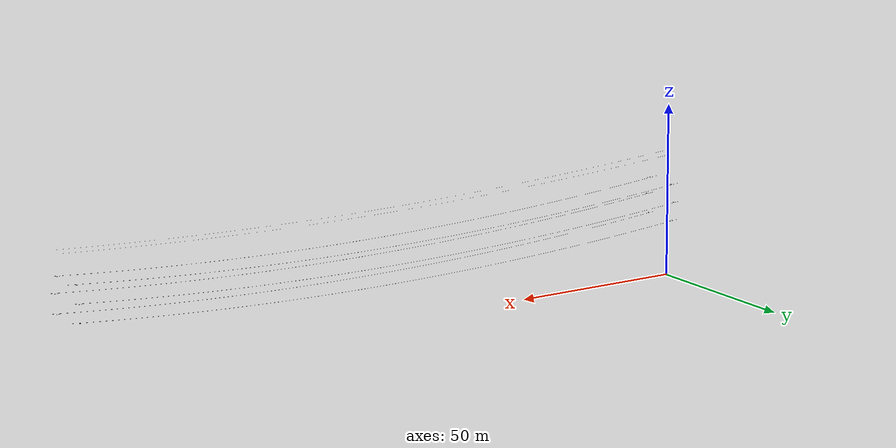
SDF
<?xml version="1.0"?>
<sdf version="1.9">
  <model name="hv_span_220kv">
    <static>true</static>
    <link name="link">
      <visual name="conductors">
        <cast_shadows>false</cast_shadows>
        <geometry><mesh><uri>meshes/conductors.obj</uri></mesh></geometry>
        <material>
          <ambient>0.16 0.16 0.17 1</ambient>
          <diffuse>0.34 0.35 0.36 1</diffuse>
          <specular>0.12 0.12 0.12 1</specular>
        </material>
      </visual>
      <visual name="earthwires">
        <cast_shadows>false</cast_shadows>
        <geometry><mesh><uri>meshes/earthwires.obj</uri></mesh></geometry>
        <material>
          <ambient>0.26 0.27 0.28 1</ambient>
          <diffuse>0.56 0.57 0.59 1</diffuse>
          <specular>0.30 0.30 0.32 1</specular>
        </material>
      </visual>
      <visual name="dampers">
        <cast_shadows>false</cast_shadows>
        <geometry><mesh><uri>meshes/dampers.obj</uri></mesh></geometry>
        <material>
          <ambient>0.18 0.18 0.19 1</ambient>
          <diffuse>0.38 0.38 0.40 1</diffuse>
          <specular>0.20 0.20 0.20 1</specular>
        </material>
      </visual>

      <collision name="c0_0"><pose>16.67 -5.60 16.37 0 1.6457 0</pose>
        <geometry><cylinder><radius>0.08</radius><length>33.43</length></cylinder></geometry></collision>
      <collision name="c0_1"><pose>50.00 -5.60 14.37 0 1.6158 0</pose>
        <geometry><cylinder><radius>0.08</radius><length>33.37</length></cylinder></geometry></collision>
      <collision name="c0_2"><pose>83.33 -5.60 13.37 0 1.5858 0</pose>
        <geometry><cylinder><radius>0.08</radius><length>33.34</length></cylinder></geometry></collision>
      <collision name="c0_3"><pose>116.67 -5.60 13.37 0 1.5558 0</pose>
        <geometry><cylinder><radius>0.08</radius><length>33.34</length></cylinder></geometry></collision>
      <collision name="c0_4"><pose>150.00 -5.60 14.37 0 1.5258 0</pose>
        <geometry><cylinder><radius>0.08</radius><length>33.37</length></cylinder></geometry></collision>
      <collision name="c0_5"><pose>183.33 -5.60 16.37 0 1.4959 0</pose>
        <geometry><cylinder><radius>0.08</radius><length>33.43</length></cylinder></geometry></collision>
      <collision name="c1_0"><pose>16.67 5.60 16.37 0 1.6457 0</pose>
        <geometry><cylinder><radius>0.08</radius><length>33.43</length></cylinder></geometry></collision>
      <collision name="c1_1"><pose>50.00 5.60 14.37 0 1.6158 0</pose>
        <geometry><cylinder><radius>0.08</radius><length>33.37</length></cylinder></geometry></collision>
      <collision name="c1_2"><pose>83.33 5.60 13.37 0 1.5858 0</pose>
        <geometry><cylinder><radius>0.08</radius><length>33.34</length></cylinder></geometry></collision>
      <collision name="c1_3"><pose>116.67 5.60 13.37 0 1.5558 0</pose>
        <geometry><cylinder><radius>0.08</radius><length>33.34</length></cylinder></geometry></collision>
      <collision name="c1_4"><pose>150.00 5.60 14.37 0 1.5258 0</pose>
        <geometry><cylinder><radius>0.08</radius><length>33.37</length></cylinder></geometry></collision>
      <collision name="c1_5"><pose>183.33 5.60 16.37 0 1.4959 0</pose>
        <geometry><cylinder><radius>0.08</radius><length>33.43</length></cylinder></geometry></collision>
      <collision name="c2_0"><pose>16.67 -6.40 21.84 0 1.6457 0</pose>
        <geometry><cylinder><radius>0.08</radius><length>33.43</length></cylinder></geometry></collision>
      <collision name="c2_1"><pose>50.00 -6.40 19.84 0 1.6158 0</pose>
        <geometry><cylinder><radius>0.08</radius><length>33.37</length></cylinder></geometry></collision>
      <collision name="c2_2"><pose>83.33 -6.40 18.84 0 1.5858 0</pose>
        <geometry><cylinder><radius>0.08</radius><length>33.34</length></cylinder></geometry></collision>
      <collision name="c2_3"><pose>116.67 -6.40 18.84 0 1.5558 0</pose>
        <geometry><cylinder><radius>0.08</radius><length>33.34</length></cylinder></geometry></collision>
      <collision name="c2_4"><pose>150.00 -6.40 19.84 0 1.5258 0</pose>
        <geometry><cylinder><radius>0.08</radius><length>33.37</length></cylinder></geometry></collision>
      <collision name="c2_5"><pose>183.33 -6.40 21.84 0 1.4959 0</pose>
        <geometry><cylinder><radius>0.08</radius><length>33.43</length></cylinder></geometry></collision>
      <collision name="c3_0"><pose>16.67 6.40 21.84 0 1.6457 0</pose>
        <geometry><cylinder><radius>0.08</radius><length>33.43</length></cylinder></geometry></collision>
      <collision name="c3_1"><pose>50.00 6.40 19.84 0 1.6158 0</pose>
        <geometry><cylinder><radius>0.08</radius><length>33.37</length></cylinder></geometry></collision>
      <collision name="c3_2"><pose>83.33 6.40 18.84 0 1.5858 0</pose>
        <geometry><cylinder><radius>0.08</radius><length>33.34</length></cylinder></geometry></collision>
      <collision name="c3_3"><pose>116.67 6.40 18.84 0 1.5558 0</pose>
        <geometry><cylinder><radius>0.08</radius><length>33.34</length></cylinder></geometry></collision>
      <collision name="c3_4"><pose>150.00 6.40 19.84 0 1.5258 0</pose>
        <geometry><cylinder><radius>0.08</radius><length>33.37</length></cylinder></geometry></collision>
      <collision name="c3_5"><pose>183.33 6.40 21.84 0 1.4959 0</pose>
        <geometry><cylinder><radius>0.08</radius><length>33.43</length></cylinder></geometry></collision>
      <collision name="c4_0"><pose>16.67 -5.20 26.84 0 1.6457 0</pose>
        <geometry><cylinder><radius>0.08</radius><length>33.43</length></cylinder></geometry></collision>
      <collision name="c4_1"><pose>50.00 -5.20 24.84 0 1.6158 0</pose>
        <geometry><cylinder><radius>0.08</radius><length>33.37</length></cylinder></geometry></collision>
      <collision name="c4_2"><pose>83.33 -5.20 23.84 0 1.5858 0</pose>
        <geometry><cylinder><radius>0.08</radius><length>33.34</length></cylinder></geometry></collision>
      <collision name="c4_3"><pose>116.67 -5.20 23.84 0 1.5558 0</pose>
        <geometry><cylinder><radius>0.08</radius><length>33.34</length></cylinder></geometry></collision>
      <collision name="c4_4"><pose>150.00 -5.20 24.84 0 1.5258 0</pose>
        <geometry><cylinder><radius>0.08</radius><length>33.37</length></cylinder></geometry></collision>
      <collision name="c4_5"><pose>183.33 -5.20 26.84 0 1.4959 0</pose>
        <geometry><cylinder><radius>0.08</radius><length>33.43</length></cylinder></geometry></collision>
      <collision name="c5_0"><pose>16.67 5.20 26.84 0 1.6457 0</pose>
        <geometry><cylinder><radius>0.08</radius><length>33.43</length></cylinder></geometry></collision>
      <collision name="c5_1"><pose>50.00 5.20 24.84 0 1.6158 0</pose>
        <geometry><cylinder><radius>0.08</radius><length>33.37</length></cylinder></geometry></collision>
      <collision name="c5_2"><pose>83.33 5.20 23.84 0 1.5858 0</pose>
        <geometry><cylinder><radius>0.08</radius><length>33.34</length></cylinder></geometry></collision>
      <collision name="c5_3"><pose>116.67 5.20 23.84 0 1.5558 0</pose>
        <geometry><cylinder><radius>0.08</radius><length>33.34</length></cylinder></geometry></collision>
      <collision name="c5_4"><pose>150.00 5.20 24.84 0 1.5258 0</pose>
        <geometry><cylinder><radius>0.08</radius><length>33.37</length></cylinder></geometry></collision>
      <collision name="c5_5"><pose>183.33 5.20 26.84 0 1.4959 0</pose>
        <geometry><cylinder><radius>0.08</radius><length>33.43</length></cylinder></geometry></collision>
      <collision name="e0_0"><pose>16.67 -2.20 35.02 0 1.6292 0</pose>
        <geometry><cylinder><radius>0.08</radius><length>33.39</length></cylinder></geometry></collision>
      <collision name="e0_1"><pose>50.00 -2.20 33.46 0 1.6059 0</pose>
        <geometry><cylinder><radius>0.08</radius><length>33.35</length></cylinder></geometry></collision>
      <collision name="e0_2"><pose>83.33 -2.20 32.68 0 1.5825 0</pose>
        <geometry><cylinder><radius>0.08</radius><length>33.34</length></cylinder></geometry></collision>
      <collision name="e0_3"><pose>116.67 -2.20 32.68 0 1.5591 0</pose>
        <geometry><cylinder><radius>0.08</radius><length>33.34</length></cylinder></geometry></collision>
      <collision name="e0_4"><pose>150.00 -2.20 33.46 0 1.5357 0</pose>
        <geometry><cylinder><radius>0.08</radius><length>33.35</length></cylinder></geometry></collision>
      <collision name="e0_5"><pose>183.33 -2.20 35.02 0 1.5124 0</pose>
        <geometry><cylinder><radius>0.08</radius><length>33.39</length></cylinder></geometry></collision>
      <collision name="e1_0"><pose>16.67 2.20 35.02 0 1.6292 0</pose>
        <geometry><cylinder><radius>0.08</radius><length>33.39</length></cylinder></geometry></collision>
      <collision name="e1_1"><pose>50.00 2.20 33.46 0 1.6059 0</pose>
        <geometry><cylinder><radius>0.08</radius><length>33.35</length></cylinder></geometry></collision>
      <collision name="e1_2"><pose>83.33 2.20 32.68 0 1.5825 0</pose>
        <geometry><cylinder><radius>0.08</radius><length>33.34</length></cylinder></geometry></collision>
      <collision name="e1_3"><pose>116.67 2.20 32.68 0 1.5591 0</pose>
        <geometry><cylinder><radius>0.08</radius><length>33.34</length></cylinder></geometry></collision>
      <collision name="e1_4"><pose>150.00 2.20 33.46 0 1.5357 0</pose>
        <geometry><cylinder><radius>0.08</radius><length>33.35</length></cylinder></geometry></collision>
      <collision name="e1_5"><pose>183.33 2.20 35.02 0 1.5124 0</pose>
        <geometry><cylinder><radius>0.08</radius><length>33.39</length></cylinder></geometry></collision>
    </link>
  </model>
</sdf>
